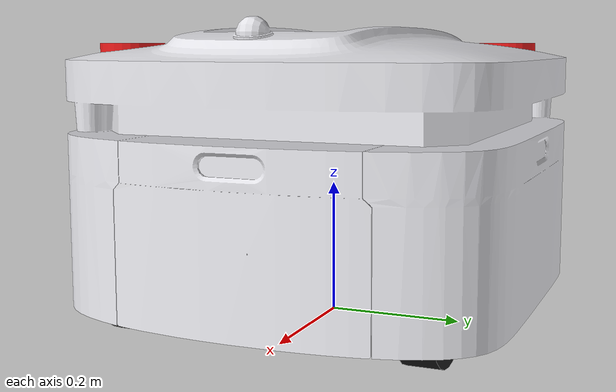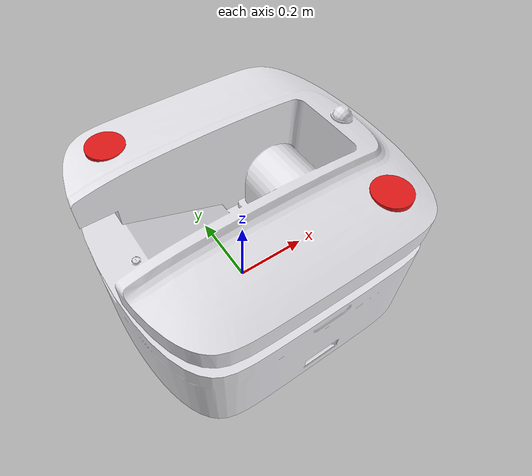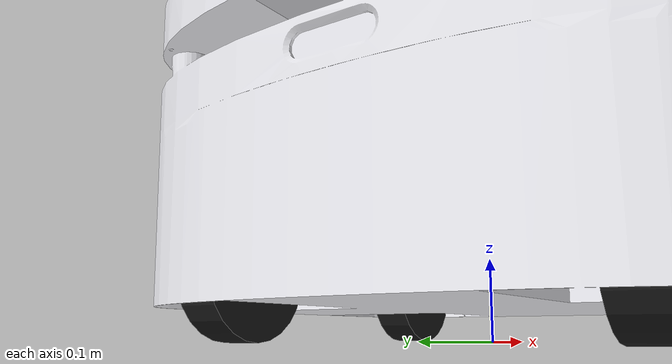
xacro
<?xml version="1.0"?>
<robot name="helios" xmlns:xacro="http://www.ros.org/wiki/xacro">

  <!-- ===================== 底盘几何 ===================== -->
  <!-- 底盘外形 0.68(长) x 0.64(宽) x 0.408(高) 已由官方整机 STL 实测确认(base_link.STL 包围盒)。
       质量 95.9kg 取自官方 CSV(整机含双臂；planar_move 仿真不依赖质量)。 -->
  <xacro:property name="base_length" value="0.68"/>   <!-- x 长（实测） -->
  <xacro:property name="base_width"  value="0.64"/>   <!-- y 宽（实测） -->
  <xacro:property name="base_height" value="0.408"/>  <!-- 底盘体高（实测） -->
  <xacro:property name="base_mass"   value="95.9"/>
  <xacro:property name="clearance"   value="0.04"/>   <!-- 底盘底面离地间隙 -->

  <!-- 轮子（4 舵轮；planar_move 不依赖轮动力，仅作可视化）
       轮距取自官方 CSV(相对几何中心)：x±0.203 / y±0.218 -->
  <xacro:property name="wheel_radius"   value="0.08"/>
  <xacro:property name="wheel_width"    value="0.05"/>
  <xacro:property name="wheel_x_offset" value="0.203"/>
  <xacro:property name="wheel_y_offset" value="0.218"/>

  <!-- base_link 取底盘体几何中心：离地 = 间隙 + 体高/2 -->
  <xacro:property name="base_z" value="${clearance + base_height/2.0}"/>

  <!-- 真实底盘 mesh 对齐：官方 base_link.STL 的几何中心位于其原点 (-0.128, 0, -0.0367)，
       挂到我们 base_link(几何中心)下需反向平移该量，使 mesh 中心与 base_link 重合。 -->
  <xacro:property name="mesh_dx" value="0.128"/>
  <xacro:property name="mesh_dy" value="0.0"/>
  <xacro:property name="mesh_dz" value="0.0367"/>

  <!-- 碰撞盒高度：必须低于雷达扫描面(lidar_z)，否则 Gazebo 2D 激光会打到自身车体。
       真实避障由 Nav2 costmap footprint 决定，此碰撞盒仅用于仿真物理。
       碰撞盒底面对齐底盘底面(base_link 下方 base_height/2)，避免“中间悬空”产生力矩。 -->
  <xacro:property name="coll_height" value="0.20"/>
  <xacro:property name="coll_z" value="${-(base_height - coll_height) / 2.0}"/>

  <xacro:property name="lidar_z"        value="0.14"/>   <!-- 圆柱上部，扫描面高度待实测 -->
  <xacro:property name="lidar_front_x"  value="0.21"/>   <!-- right_front, STL 实测 -->
  <xacro:property name="lidar_front_y"  value="-0.22"/>
  <xacro:property name="lidar_rear_x"   value="-0.21"/>  <!-- left_behind, STL 实测 -->
  <xacro:property name="lidar_rear_y"   value="0.22"/>

  <!-- 雷达扫描参数：已用真机实测验证(雷达测试.md)——angle ±π, 1°(360点), 5Hz,
       SDK 输出 range 0~100m / 无回波用 101.0；仿真按有效测距 0.1~25m 建模 -->
  <xacro:property name="lidar_samples"  value="360"/>
  <xacro:property name="lidar_min_ang"  value="-3.14159"/>
  <xacro:property name="lidar_max_ang"  value="3.14159"/>
  <xacro:property name="lidar_min_range" value="0.10"/>
  <xacro:property name="lidar_max_range" value="25.0"/>
  <xacro:property name="lidar_rate"     value="5.0"/>

  <!-- 底盘 4 路 TOF 深度相机（避障用，挂在 base_link 四面；与头部 Orbbec 主相机/IMU 无关）：
       位置由官方 base_link.STL 实测——4 个横椭圆(≈140×56mm)
       恰在四个面中央(前后 x=±0.34 / 左右 y=±0.32)，高度 z≈+0.016，朝外。 -->
  <xacro:property name="tof_z" value="0.016"/>          <!-- STL 实测：椭圆中心高度 -->

  <!-- ===================== 惯量宏 ===================== -->
  <xacro:macro name="box_inertia" params="m w h d">
    <inertial>
      <mass value="${m}"/>
      <inertia
        ixx="${m*(h*h+d*d)/12.0}" ixy="0.0" ixz="0.0"
        iyy="${m*(w*w+d*d)/12.0}" iyz="0.0"
        izz="${m*(w*w+h*h)/12.0}"/>
    </inertial>
  </xacro:macro>

  <xacro:macro name="cyl_inertia" params="m r h">
    <inertial>
      <mass value="${m}"/>
      <inertia
        ixx="${m*(3*r*r+h*h)/12.0}" ixy="0.0" ixz="0.0"
        iyy="${m*(3*r*r+h*h)/12.0}" iyz="0.0"
        izz="${m*r*r/2.0}"/>
    </inertial>
  </xacro:macro>

  <!-- ===================== base ===================== -->
  <link name="base_footprint"/>

  <link name="base_link">
    <!-- 可视化：官方真实底盘 mesh（含雷达圆柱/相机椭圆造型），平移对齐到几何中心 -->
    <visual>
      <origin xyz="${mesh_dx} ${mesh_dy} ${mesh_dz}" rpy="0 0 0"/>
      <!-- 用 file:// 绝对路径(xacro 解析期由 $(find) 展开)：
           package:// 只有 gzserver 能解析，gzclient(GUI) 不认 → 车在 GUI 里不显示。
           file:// 绝对路径 server/client/RViz 都能直接加载。 -->
      <geometry>
        <mesh filename="file://$(find helios_description)/meshes/base_link.STL"/>
      </geometry>
      <material name="white">
        <color rgba="0.9 0.9 0.92 1.0"/>
      </material>
    </visual>
    <!-- 仿真不做 Gazebo 物理碰撞（planar_move 2D 驱动；Nav2 costmap 管避障）。
       保留 coll_* 变量供注释/日后真机 URDF 复用。 -->
    <xacro:box_inertia m="${base_mass}" w="${base_length}" h="${base_width}" d="${base_height}"/>
  </link>

  <joint name="base_joint" type="fixed">
    <parent link="base_footprint"/>
    <child link="base_link"/>
    <origin xyz="0 0 ${base_z}" rpy="0 0 0"/>
  </joint>

  <!-- ===================== 轮子（仅可视化；planar_move 不驱轮，碰撞会挂障碍导致侧翻） ===================== -->
  <xacro:macro name="wheel" params="name x y">
    <link name="${name}">
      <visual>
        <origin xyz="0 0 0" rpy="1.5708 0 0"/>
        <geometry>
          <cylinder radius="${wheel_radius}" length="${wheel_width}"/>
        </geometry>
        <material name="black">
          <color rgba="0.1 0.1 0.1 1.0"/>
        </material>
      </visual>
      <xacro:cyl_inertia m="0.01" r="${wheel_radius}" h="${wheel_width}"/>
    </link>
    <joint name="${name}_joint" type="fixed">
      <parent link="base_link"/>
      <child link="${name}"/>
      <!-- 轮心离地 = wheel_radius，相对 base_link 的 z = wheel_radius - base_z -->
      <origin xyz="${x} ${y} ${wheel_radius - base_z}" rpy="0 0 0"/>
    </joint>
  </xacro:macro>

  <xacro:wheel name="wheel_fl" x="${wheel_x_offset}"  y="${wheel_y_offset}"/>
  <xacro:wheel name="wheel_fr" x="${wheel_x_offset}"  y="${-wheel_y_offset}"/>
  <xacro:wheel name="wheel_rl" x="${-wheel_x_offset}" y="${wheel_y_offset}"/>
  <xacro:wheel name="wheel_rr" x="${-wheel_x_offset}" y="${-wheel_y_offset}"/>

  <!-- ===================== 雷达 link 宏 ===================== -->
  <xacro:macro name="lidar_link" params="name x y z">
    <link name="${name}">
      <visual>
        <geometry>
          <cylinder radius="0.045" length="0.06"/>
        </geometry>
        <material name="red">
          <color rgba="0.9 0.1 0.1 1.0"/>
        </material>
      </visual>
      <xacro:cyl_inertia m="0.01" r="0.045" h="0.06"/>
    </link>
    <joint name="${name}_joint" type="fixed">
      <parent link="base_link"/>
      <child link="${name}"/>
      <origin xyz="${x} ${y} ${z}" rpy="0 0 0"/>
    </joint>
  </xacro:macro>

  <xacro:lidar_link name="right_front_laser_link"
                    x="${lidar_front_x}" y="${lidar_front_y}" z="${lidar_z}"/>
  <xacro:lidar_link name="left_behind_laser_link"
                    x="${lidar_rear_x}" y="${lidar_rear_y}" z="${lidar_z}"/>

  <!-- ===================== 底盘 TOF 避障相机 frame（非头部 Orbbec） ===================== -->
  <!-- 仅 frame，暂不挂传感器插件；待确认 SDK 接口与外参后再启用 -->
  <xacro:macro name="tof_frame" params="name x y yaw">
    <link name="${name}"/>
    <joint name="${name}_joint" type="fixed">
      <parent link="base_link"/>
      <child link="${name}"/>
      <origin xyz="${x} ${y} ${tof_z}" rpy="0 0 ${yaw}"/>
    </joint>
  </xacro:macro>

  <xacro:tof_frame name="tof_front_link" x="0.34"  y="0.0"  yaw="0.0"/>
  <xacro:tof_frame name="tof_rear_link"  x="-0.34" y="0.0"  yaw="3.14159"/>
  <xacro:tof_frame name="tof_left_link"  x="0.0"   y="0.32" yaw="1.5708"/>
  <xacro:tof_frame name="tof_right_link" x="0.0"   y="-0.32" yaw="-1.5708"/>

  <!-- ===================== Gazebo: 2D 仿真稳定性 ===================== -->
  <!-- planar_move 只控制 xy+yaw；若仍开重力/子 link 碰撞，撞柱子会被 ODE 掀翻。 -->
  <xacro:macro name="gazebo_no_tip" params="link">
    <gazebo reference="${link}">
      <gravity>false</gravity>
    </gazebo>
  </xacro:macro>

  <xacro:gazebo_no_tip link="base_link"/>
  <xacro:gazebo_no_tip link="wheel_fl"/>
  <xacro:gazebo_no_tip link="wheel_fr"/>
  <xacro:gazebo_no_tip link="wheel_rl"/>
  <xacro:gazebo_no_tip link="wheel_rr"/>
  <xacro:gazebo_no_tip link="right_front_laser_link"/>
  <xacro:gazebo_no_tip link="left_behind_laser_link"/>

  <!-- ===================== Gazebo: 全向底盘 ===================== -->
  <gazebo>
    <plugin name="planar_move" filename="libgazebo_ros_planar_move.so">
      <ros>
        <namespace>/</namespace>
        <remapping>cmd_vel:=cmd_vel</remapping>
        <remapping>odom:=odom</remapping>
      </ros>
      <update_rate>50</update_rate>
      <publish_rate>30</publish_rate>
      <publish_odom>true</publish_odom>
      <publish_odom_tf>true</publish_odom_tf>
      <odometry_frame>odom</odometry_frame>
      <robot_base_frame>base_footprint</robot_base_frame>
      <covariance_x>0.0001</covariance_x>
      <covariance_y>0.0001</covariance_y>
      <covariance_yaw>0.001</covariance_yaw>
    </plugin>
  </gazebo>

  <!-- ===================== Gazebo: 双雷达宏 ===================== -->
  <xacro:macro name="lidar_gazebo" params="link topic">
    <gazebo reference="${link}">
      <material>Gazebo/Red</material>
      <sensor name="${link}_sensor" type="ray">
        <always_on>true</always_on>
        <visualize>false</visualize>
        <update_rate>${lidar_rate}</update_rate>
        <ray>
          <scan>
            <horizontal>
              <samples>${lidar_samples}</samples>
              <resolution>1</resolution>
              <min_angle>${lidar_min_ang}</min_angle>
              <max_angle>${lidar_max_ang}</max_angle>
            </horizontal>
          </scan>
          <range>
            <min>${lidar_min_range}</min>
            <max>${lidar_max_range}</max>
            <resolution>0.01</resolution>
          </range>
          <noise>
            <type>gaussian</type>
            <mean>0.0</mean>
            <stddev>0.01</stddev>
          </noise>
        </ray>
        <plugin name="${link}_plugin" filename="libgazebo_ros_ray_sensor.so">
          <ros>
            <remapping>~/out:=${topic}</remapping>
          </ros>
          <output_type>sensor_msgs/LaserScan</output_type>
          <frame_name>${link}</frame_name>
        </plugin>
      </sensor>
    </gazebo>
  </xacro:macro>

  <xacro:lidar_gazebo link="right_front_laser_link" topic="/sr_amr_control/front/scan"/>
  <xacro:lidar_gazebo link="left_behind_laser_link" topic="/sr_amr_control/rear/scan"/>

  <gazebo reference="base_link">
    <material>Gazebo/White</material>
  </gazebo>

  <gazebo reference="wheel_fl"><material>Gazebo/Black</material></gazebo>
  <gazebo reference="wheel_fr"><material>Gazebo/Black</material></gazebo>
  <gazebo reference="wheel_rl"><material>Gazebo/Black</material></gazebo>
  <gazebo reference="wheel_rr"><material>Gazebo/Black</material></gazebo>

</robot>
